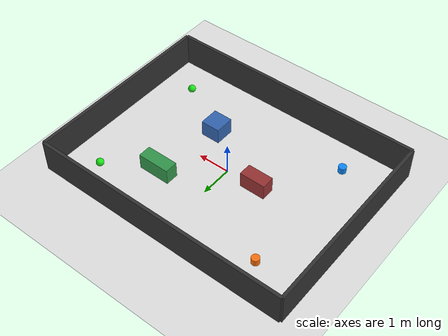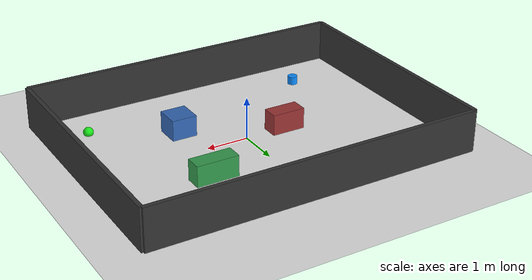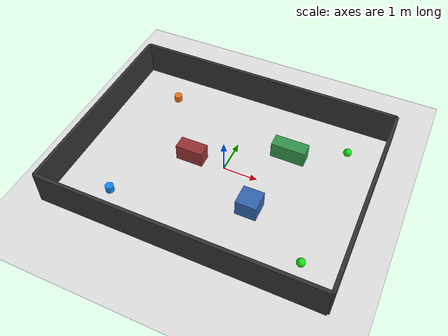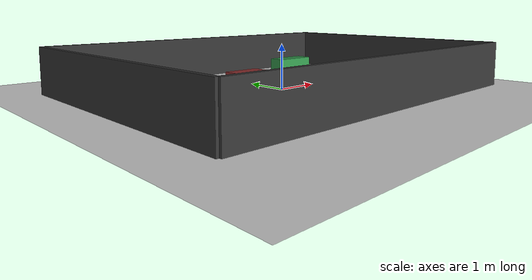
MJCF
<mujoco model="nav_room_controllable">
  <option timestep="0.01" gravity="0 0 -9.81"/>
  <visual>
    <map znear="0.01" zfar="50"/>
  </visual>

  <worldbody>
    <!-- 地板 -->
    <geom name="floor" type="plane" size="5 5 0.1" rgba="0.9 0.9 0.9 1"/>

    <!-- 房间内墙（一个 8m x 6m 的矩形） -->
    <geom name="wall_n" type="box" pos="0 3 0.5"  size="4 0.05 0.5" rgba="0.2 0.2 0.2 1" contype="1" conaffinity="1"/>
    <geom name="wall_s" type="box" pos="0 -3 0.5" size="4 0.05 0.5" rgba="0.2 0.2 0.2 1" contype="1" conaffinity="1"/>
    <geom name="wall_e" type="box" pos="4 0 0.5"  size="0.05 3 0.5" rgba="0.2 0.2 0.2 1" contype="1" conaffinity="1"/>
    <geom name="wall_w" type="box" pos="-4 0 0.5" size="0.05 3 0.5" rgba="0.2 0.2 0.2 1" contype="1" conaffinity="1"/>

    <!-- 障碍物（命名以 obst_ 开头方便解析） -->
    <geom name="obst_1" type="box" pos="-1.0  0.0 0.25" size="0.4 0.2 0.25" rgba="0.6 0.2 0.2 1"/>
    <geom name="obst_2" type="box" pos=" 1.2 -1.0 0.25" size="0.3 0.3 0.25" rgba="0.2 0.4 0.7 1"/>
    <geom name="obst_3" type="box" pos=" 1.5  1.2 0.25" size="0.5 0.2 0.25" rgba="0.2 0.6 0.3 1"/>

    <!-- 机器人 Alice（带控制输入） -->
    <body name="alice" pos="-2.5 -2.0 0.1">
      <joint name="alice_x" type="slide" axis="1 0 0" range="-4 4"/>
      <joint name="alice_y" type="slide" axis="0 1 0" range="-3 3"/>
      <joint name="alice_z" type="slide" axis="0 0 1" range="0 1"/>
      <geom type="cylinder" size="0.12 0.1" rgba="0.05 0.55 1.0 1" contype="1" conaffinity="1"/>
    </body>

    <!-- 机器人 Bob（带控制输入） -->
    <body name="bob" pos="-2.5  2.0 0.1">
      <joint name="bob_x" type="slide" axis="1 0 0" range="-4 4"/>
      <joint name="bob_y" type="slide" axis="0 1 0" range="-3 3"/>
      <joint name="bob_z" type="slide" axis="0 0 1" range="0 1"/>
      <geom type="cylinder" size="0.12 0.1" rgba="1.0 0.45 0.05 1" contype="1" conaffinity="1"/>
    </body>

    <!-- 目标点（绿色 site，便于渲染/检查） -->
    <site name="goal_a" pos="3.0 -2.0 0.05" size="0.12" rgba="0.1 0.9 0.1 1"/>
    <site name="goal_b" pos="3.0  2.0 0.05" size="0.12" rgba="0.1 0.9 0.1 1"/>
  </worldbody>

  <!-- 控制输入 -->
  <actuator>
    <motor name="alice_x_motor" joint="alice_x" gear="1" ctrllimited="true" ctrlrange="-1 1"/>
    <motor name="alice_y_motor" joint="alice_y" gear="1" ctrllimited="true" ctrlrange="-1 1"/>
    <motor name="bob_x_motor" joint="bob_x" gear="1" ctrllimited="true" ctrlrange="-1 1"/>
    <motor name="bob_y_motor" joint="bob_y" gear="1" ctrllimited="true" ctrlrange="-1 1"/>
  </actuator>
</mujoco>
